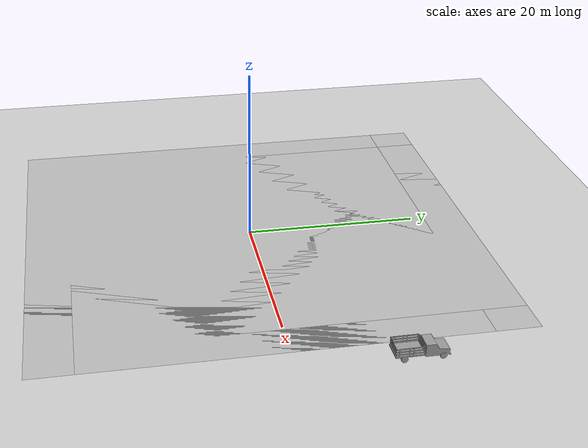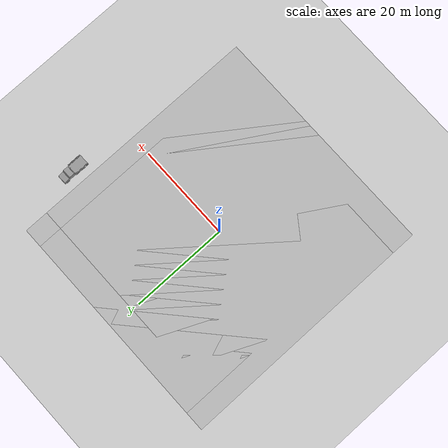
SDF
<sdf version="1.6">
 <world name="default">
  <light name="sun" type="directional">
   <shadows>0</shadows>
   <cast_shadows>0</cast_shadows>
   <pose>0 0 10 0 -0 0</pose>
   <diffuse>0.8 0.8 0.8 1</diffuse>
   <specular>0.2 0.2 0.2 1</specular>
   <attenuation>
    <range>1000</range>
    <constant>0.9</constant>
    <linear>0.01</linear>
    <quadratic>0.001</quadratic>
   </attenuation>
   <direction>-0.5 0.1 -0.9</direction>
  </light>
  <model name="ground_plane">
   <static>1</static>
   <link name="link">
    <collision name="collision">
     <geometry><plane><normal>0 0 1</normal><size>100 100</size></plane></geometry>
     <surface><friction><ode><mu>100</mu><mu2>50</mu2></ode></friction></surface>
    </collision>
    <visual name="visual">
     <cast_shadows>0</cast_shadows>
     <geometry><plane><normal>0 0 1</normal><size>100 100</size></plane></geometry>
     <material>
      <script><uri>file://media/materials/scripts/gazebo.material</uri><name>Gazebo/Grey</name></script>
     </material>
    </visual>
   </link>
  </model>
  <gravity>0 0 -9.8</gravity>
  <magnetic_field>6e-06 2.3e-05 -4.2e-05</magnetic_field>
  <atmosphere type="adiabatic"/>
  <physics name="default_physics" default="0" type="ode">
   <max_step_size>0.001</max_step_size>
   <real_time_factor>1</real_time_factor>
   <real_time_update_rate>1000</real_time_update_rate>
  </physics>
  <scene><ambient>0.4 0.4 0.4 1</ambient><background>0.7 0.7 0.7 1</background><shadows>1</shadows></scene>
  <audio><device>default</device></audio>
  <spherical_coordinates>
   <surface_model>EARTH_WGS84</surface_model>
   <latitude_deg>0</latitude_deg>
   <longitude_deg>0</longitude_deg>
   <elevation>0</elevation>
   <heading_deg>0</heading_deg>
  </spherical_coordinates>
  <model name="my_mud_box">
   <link name="link">
    <inertial>
     <inertia><ixx>0</ixx><ixy>0</ixy><ixz>0</ixz><iyy>0</iyy><iyz>0</iyz><izz>0</izz></inertia>
     <mass>0</mass>
    </inertial>
    <visual name="visual_1">
     <pose>-2 2.5 0 0 -0 0</pose>
     <cast_shadows>0</cast_shadows>
     <geometry><box><size>45 48 0.0001</size></box></geometry>
     <material>
      <script>
       <uri>model://mud_box/materials/scripts</uri>
       <uri>model://mud_box/materials/textures</uri>
       <name>vrc/mud</name>
      </script>
     </material>
    </visual>
    <visual name="visual_2">
     <pose>2 2.5 0 0 -0 0</pose>
     <cast_shadows>0</cast_shadows>
     <geometry><box><size>45 48 0.0001</size></box></geometry>
     <material>
      <script>
       <uri>model://mud_box/materials/scripts</uri>
       <uri>model://mud_box/materials/textures</uri>
       <name>vrc/mud</name>
      </script>
     </material>
    </visual>
    <visual name="visual_3">
     <pose>2 -2.5 0 0 -0 0</pose>
     <cast_shadows>0</cast_shadows>
     <geometry><box><size>45 48 0.0001</size></box></geometry>
     <material>
      <script>
       <uri>model://mud_box/materials/scripts</uri>
       <uri>model://mud_box/materials/textures</uri>
       <name>vrc/mud</name>
      </script>
     </material>
    </visual>
    <visual name="visual_4">
     <pose>-2 -2.5 0 0 -0 0</pose>
     <cast_shadows>0</cast_shadows>
     <geometry><box><size>45 48 0.0001</size></box></geometry>
     <material>
      <script>
       <uri>model://mud_box/materials/scripts</uri>
       <uri>model://mud_box/materials/textures</uri>
       <name>vrc/mud</name>
      </script>
     </material>
    </visual>
    <collision name="collision">
     <geometry><box><size>90 92 0.0001</size></box></geometry>
     <surface>
      <friction>
       <ode><mu>1</mu><mu2>1</mu2><fdir1>0 0 0</fdir1><slip1>0</slip1><slip2>0</slip2></ode>
       <torsional>
        <coefficient>1</coefficient>
        <patch_radius>0</patch_radius>
        <surface_radius>0</surface_radius>
        <use_patch_radius>1</use_patch_radius>
        <ode><slip>0</slip></ode>
       </torsional>
      </friction>
      <bounce><restitution_coefficient>0</restitution_coefficient><threshold>1e+06</threshold></bounce>
      <contact>
       <collide_without_contact>0</collide_without_contact>
       <collide_without_contact_bitmask>1</collide_without_contact_bitmask>
       <collide_bitmask>1</collide_bitmask>
       <ode>
        <soft_cfm>0</soft_cfm>
        <soft_erp>0.2</soft_erp>
        <kp>1e+13</kp>
        <kd>1</kd>
        <max_vel>0.01</max_vel>
        <min_depth>0</min_depth>
       </ode>
       <bullet>
        <split_impulse>1</split_impulse>
        <split_impulse_penetration_threshold>-0.01</split_impulse_penetration_threshold>
        <soft_cfm>0</soft_cfm>
        <soft_erp>0.2</soft_erp>
        <kp>1e+13</kp>
        <kd>1</kd>
       </bullet>
      </contact>
     </surface>
    </collision>
   </link>
   <static>1</static>
   <pose>-0.105456 0.109102 0 0 -0 0</pose>
  </model>
  <model name="barn_sdf">
   <link name="link_0">
    <inertial>
     <mass>1</mass>
     <inertia>
      <ixx>0.166667</ixx>
      <ixy>0</ixy>
      <ixz>0</ixz>
      <iyy>0.166667</iyy>
      <iyz>0</iyz>
      <izz>0.166667</izz>
     </inertia>
    </inertial>
    <pose>5e-06 4e-06 0 0 -0 0</pose>
    <visual name="visual">
     <geometry>
      <mesh>
       <uri>/home/gelo/catkin_python3/src/rl_uav_navigation_2/models/barn_scketup/model.dae</uri>
       <scale>1 1 1</scale>
      </mesh>
     </geometry>
     <material>
      <lighting>1</lighting>
      <script><uri>file://media/materials/scripts/gazebo.material</uri><name>Gazebo/Grey</name></script>
     </material>
    </visual>
    <collision name="collision">
     <geometry>
      <mesh>
       <uri>/home/gelo/catkin_python3/src/rl_uav_navigation_2/models/barn_scketup/model.dae</uri>
       <scale>1 1 1</scale>
      </mesh>
     </geometry>
     <surface>
      <friction>
       <ode><mu>1</mu><mu2>1</mu2><fdir1>0 0 0</fdir1><slip1>0</slip1><slip2>0</slip2></ode>
       <torsional>
        <coefficient>1</coefficient>
        <patch_radius>0</patch_radius>
        <surface_radius>0</surface_radius>
        <use_patch_radius>1</use_patch_radius>
        <ode><slip>0</slip></ode>
       </torsional>
      </friction>
      <bounce><restitution_coefficient>0</restitution_coefficient><threshold>1e+06</threshold></bounce>
      <contact>
       <collide_without_contact>0</collide_without_contact>
       <collide_without_contact_bitmask>1</collide_without_contact_bitmask>
       <collide_bitmask>1</collide_bitmask>
       <ode>
        <soft_cfm>0</soft_cfm>
        <soft_erp>0.2</soft_erp>
        <kp>1e+13</kp>
        <kd>1</kd>
        <max_vel>0.01</max_vel>
        <min_depth>0</min_depth>
       </ode>
       <bullet>
        <split_impulse>1</split_impulse>
        <split_impulse_penetration_threshold>-0.01</split_impulse_penetration_threshold>
        <soft_cfm>0</soft_cfm>
        <soft_erp>0.2</soft_erp>
        <kp>1e+13</kp>
        <kd>1</kd>
       </bullet>
      </contact>
     </surface>
    </collision>
   </link>
   <static>0</static>
   <pose>25.9756 14.6986 0 0 0 -1.56134</pose>
  </model>
 </world>
</sdf>
